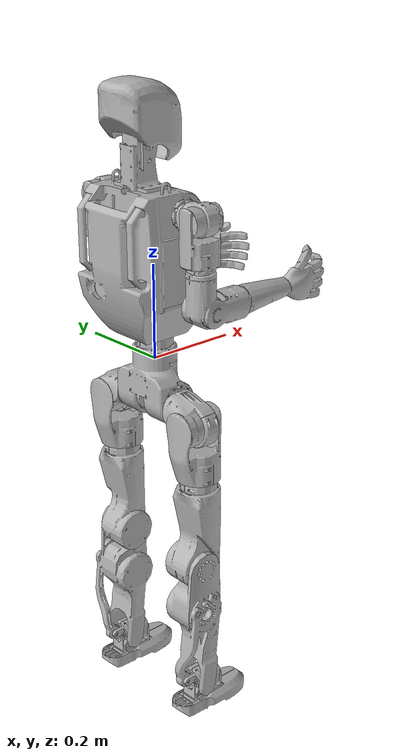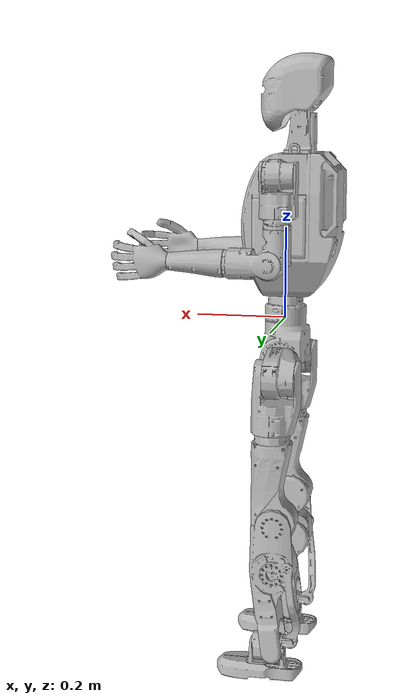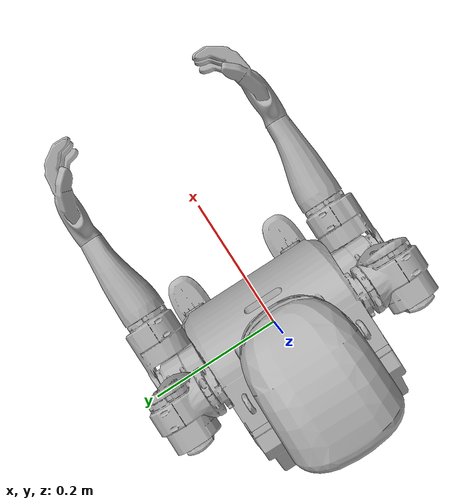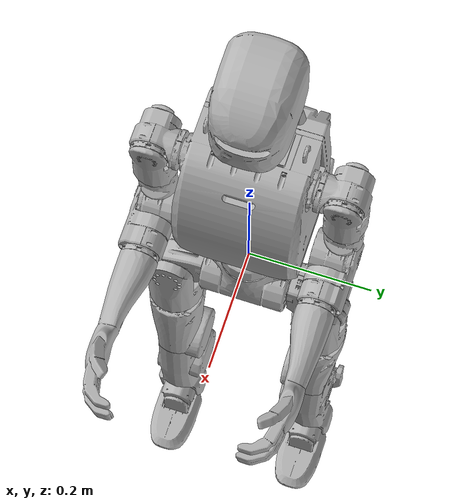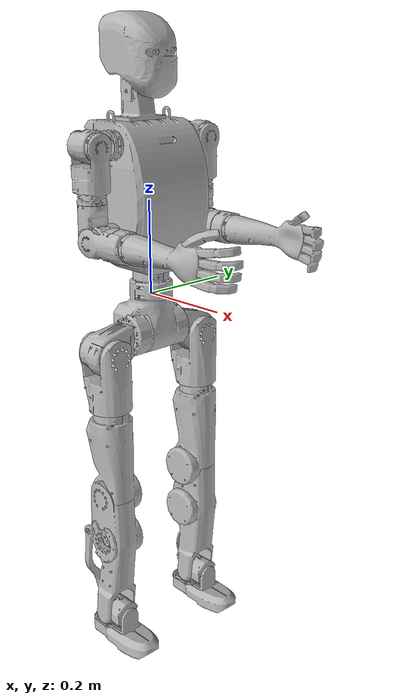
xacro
<?xml version="1.0"?>
<robot xmlns:xacro="http://www.ros.org/wiki/xacro" name="k1">
  <xacro:property name="meshes_file_direction" value="package://ai_sapiens_description/meshes/k1_rev1" />
  <xacro:arg name="use_mock_hardware" default="false" />
  <xacro:arg name="mock_sensor_commands" default="false" />
  <xacro:arg name="prefix" default="" />
  <xacro:arg name="model" default="k1_rev1" />
  <xacro:arg name="sim_mujoco" default="false" />
  <xacro:arg name="depth_policy_yaml" default="" />
  <xacro:arg name="parkour_physics" default="false" />
  <xacro:arg name="mujoco_viewer" default="true" />
  <xacro:arg name="mujoco_gantry" default="true" />
  <xacro:arg name="radiomaster_usb" default="false" />
  <xacro:arg name="radiomaster_usb_device" default="/dev/input/js0" />
  <xacro:include filename="$(find ai_sapiens_description)/urdf/k1_rev1/$(arg model).urdf.xacro" />

  <xacro:include filename="$(find ai_sapiens_description)/ros2_control/k1_rev1/k1.ros2_control.xacro" />
  <xacro:include filename="$(find ai_sapiens_description)/ros2_control/k1_rev1/k1_mujoco.ros2_control.xacro" />
  <xacro:include filename="$(find ai_sapiens_description)/ros2_control/k1_rev1/k1_radiomaster_usb.ros2_control.xacro" />

  <xacro:k1/>

  <xacro:if value="$(arg sim_mujoco)">
    <xacro:k1_mujoco_system
      viewer="$(arg mujoco_viewer)"
      gantry="$(arg mujoco_gantry)"
      depth_policy_yaml="$(arg depth_policy_yaml)"
      parkour_physics="$(arg parkour_physics)"/>
    <xacro:if value="$(arg radiomaster_usb)">
      <xacro:k1_radiomaster_usb_system
        device="$(arg radiomaster_usb_device)"/>
    </xacro:if>
  </xacro:if>
  <xacro:unless value="$(arg sim_mujoco)">
    <xacro:k1_system
      use_mock_hardware="$(arg use_mock_hardware)"
      mock_sensor_commands="$(arg mock_sensor_commands)"/>
  </xacro:unless>

</robot>

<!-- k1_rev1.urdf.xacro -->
<robot xmlns:xacro="http://www.ros.org/wiki/xacro">
<xacro:macro name="k1">
  <material name="dark">
    <color rgba="0.2 0.2 0.2 1"/>
  </material>
  <material name="white">
    <color rgba="0.7 0.7 0.7 1"/>
  </material>
  <material name="blue">
    <color rgba="0.0 0.0 1.0 1"/>
  </material>
  <mujoco>
    <compiler discardvisual="false" meshdir="package://ai_sapiens_description/meshes/k1_rev1"/>
  </mujoco>

  <link name="head_link">
    <visual>
      <origin rpy="0 0 0" xyz="0 0 0"/>
      <geometry>
        <mesh filename="package://ai_sapiens_description/meshes/k1_rev1/head_link.stl" scale="0.001 0.001 0.001"/>
      </geometry>
      <material name="white"/>
    </visual>
    <collision>
      <origin rpy="0 0 0" xyz="0 0 0"/>
      <geometry>
        <mesh filename="package://ai_sapiens_description/meshes/k1_rev1/head_link.stl" scale="0.001 0.001 0.001"/>
      </geometry>
    </collision>
    <inertial>
      <origin xyz="7.905180800e-03 7.391136900e-06 1.108984300e-01" />
      <mass value="6.792353500e-01" />
      <inertia ixx="2.471933800e-03" ixy="-8.394472500e-08" ixz="2.835210500e-05"
                iyy="2.738339300e-03" iyz="-9.341772900e-08"
                izz="1.531146400e-03" />
    </inertial>
  </link>

  <link name="pelvis">
    <visual>
      <origin rpy="0 0 0" xyz="0 0 0"/>
      <geometry>
        <mesh filename="package://ai_sapiens_description/meshes/k1_rev1/pelvis.stl" scale="0.001 0.001 0.001"/>
      </geometry>
      <material name="white"/>
    </visual>
    <inertial>
      <origin xyz="-2.925359500e-03 1.127629500e-06 -5.031528100e-02" />
      <mass value="3.612285000e+00" />
      <inertia ixx="1.310875300e-02" ixy="-2.328763400e-07" ixz="5.514392300e-05"
                iyy="9.176269400e-03" iyz="0.000000000e+00"
                izz="7.737728900e-03" />
    </inertial>

  </link>
  <!-- Legs -->
  <link name="left_hip_pitch_link">
    <visual>
      <origin rpy="0 0 0" xyz="0 0 0"/>
      <geometry>
        <mesh filename="package://ai_sapiens_description/meshes/k1_rev1/left_hip_pitch_link.stl" scale="0.001 0.001 0.001"/>
      </geometry>
      <material name="white"/>
    </visual>
    <collision>
      <origin xyz="0 0.05 -0.02" rpy="1.5708 0 0"/>
      <geometry>
        <cylinder radius="0.04" length="0.07"/>
      </geometry>
    </collision>
    <inertial>
      <origin xyz="-1.531630904980e-03 7.963346595672e-02 -2.592428596527e-02" />
      <mass value="1.145107600000e+00" />
      <inertia ixx="1.421889812386e-03" ixy="2.042184810525e-05" ixz="-1.676488789760e-05"
                iyy="1.033629795483e-03" iyz="1.517172548758e-04"
                izz="1.088132517762e-03" />
    </inertial>

  </link>
  <joint name="left_hip_pitch_joint" type="revolute">
    <origin rpy="0 0 0" xyz="0.0 0.040 -0.081"/>
    <parent link="pelvis"/>
    <child link="left_hip_pitch_link"/>
    <axis xyz="0 1 0"/>
    <limit effort="96.9" lower="-2.4435" upper="2.4435" velocity="11.5"/>
  </joint>
  <link name="left_hip_roll_link">
    <visual>
      <origin rpy="0 0 0" xyz="0 0 0"/>
      <geometry>
        <mesh filename="package://ai_sapiens_description/meshes/k1_rev1/left_hip_roll_link.stl" scale="0.001 0.001 0.001"/>
      </geometry>
      <material name="white"/>
    </visual>
    <inertial>
      <origin xyz="1.451723700000e-02 0.000000000000e+00 -7.908224400000e-02" />
      <mass value="1.553528600000e+00" />
      <inertia ixx="2.895593913609e-03" ixy="0.000000000000e+00" ixz="-7.419460800000e-05"
                iyy="3.373453150000e-03" iyz="-2.389544800000e-07"
                izz="1.930057813609e-03" />
    </inertial>
  </link>
  <joint name="left_hip_roll_joint" type="revolute">
    <origin rpy="0 0 0" xyz="-0.008 0.085 -0.030"/>
    <parent link="left_hip_pitch_link"/>
    <child link="left_hip_roll_link"/>
    <axis xyz="1 0 0"/>
    <limit effort="96.9" lower="-0.6109" upper="2.5307" velocity="11.5"/>
  </joint>
  <link name="left_hip_yaw_link">
    <visual>
      <origin rpy="0 0 0" xyz="0 0 0"/>
      <geometry>
        <mesh filename="package://ai_sapiens_description/meshes/k1_rev1/left_hip_yaw_link.stl" scale="0.001 0.001 0.001"/>
      </geometry>
      <material name="white"/>
    </visual>
    <collision>
      <origin xyz="0.0 0 -0.08" rpy="0 0 0"/>
      <geometry>
        <cylinder radius="0.045" length="0.13"/>
      </geometry>
    </collision>
    <inertial>
      <origin xyz="-2.271799169407e-03 -5.348690484479e-03 -1.837910791103e-01" />
      <mass value="1.835774100000e+00" />
      <inertia ixx="1.056957363374e-02" ixy="-5.176745338720e-05" ixz="-4.528312668963e-04"
                iyy="1.098149862574e-02" iyz="-5.657788862029e-04"
                izz="1.600639866804e-03" />
    </inertial>
  </link>
  <joint name="left_hip_yaw_joint" type="revolute">
    <origin rpy="0 0 0" xyz="0.015 0.0 -0.0905"/>
    <parent link="left_hip_roll_link"/>
    <child link="left_hip_yaw_link"/>
    <axis xyz="0 0 1"/>
    <limit effort="96.9" lower="-3.1416" upper="3.1416" velocity="11.5"/>
  </joint>
  <link name="left_knee_link">
    <visual>
      <origin rpy="0 0 0" xyz="0 0 0"/>
      <geometry>
        <mesh filename="package://ai_sapiens_description/meshes/k1_rev1/left_knee_link.stl" scale="0.001 0.001 0.001"/>
      </geometry>
      <material name="white"/>
    </visual>
    <inertial>
      <origin xyz="-2.270241351379e-03 4.250424132236e-03 -1.299305649983e-01" />
      <mass value="2.527145400000e+00" />
      <inertia ixx="1.262780659654e-02" ixy="1.945190841167e-04" ixz="-7.980998797765e-04"
                iyy="1.311422450046e-02" iyz="-3.173312502248e-04"
                izz="2.980295546432e-03" />
    </inertial>
    <collision>
      <origin xyz="0.0 0 -0.10" rpy="0 0 0"/>
      <geometry>
        <cylinder radius="0.04" length="0.18"/>
      </geometry>
    </collision>
  </link>
  <joint name="left_knee_joint" type="revolute">
    <origin rpy="0 0 0" xyz="-0.007 0.0 -0.2365"/>
    <parent link="left_hip_yaw_link"/>
    <child link="left_knee_link"/>
    <axis xyz="0 1 0"/>
    <limit effort="96.9" lower="0" upper="2.3562" velocity="11.5"/>
  </joint>
  <link name="left_ankle_pitch_link">
    <visual>
      <origin rpy="0 0 0" xyz="0 0 0"/>
      <geometry>
        <mesh filename="package://ai_sapiens_description/meshes/k1_rev1/left_ankle_pitch_link.stl" scale="0.001 0.001 0.001"/>
      </geometry>
      <material name="white"/>
    </visual>
    <inertial>
      <origin xyz="4.741514100000e-03 0.000000000000e+00 2.430240700000e-03" />
      <mass value="6.809980800000e-01" />
      <inertia ixx="3.739276718594e-04" ixy="0.000000000000e+00" ixz="4.977216400000e-05"
                iyy="4.252725400000e-04" iyz="0.000000000000e+00"
                izz="4.458709718594e-04" />
    </inertial>
  </link>
  <joint name="left_ankle_pitch_joint" type="revolute">
    <origin rpy="0 0 0" xyz="0.0 0.0 -0.294"/>
    <parent link="left_knee_link"/>
    <child link="left_ankle_pitch_link"/>
    <axis xyz="0 1 0"/>
    <limit effort="96.9" lower="-0.7854" upper="0.7854" velocity="11.5"/>
  </joint>
  <link name="left_ankle_roll_link">
    <visual>
      <origin rpy="0 0 0" xyz="0 0 0"/>
      <geometry>
        <mesh filename="package://ai_sapiens_description/meshes/k1_rev1/left_ankle_roll_link.stl" scale="0.001 0.001 0.001"/>
      </geometry>
      <material name="white"/>
    </visual>

    <collision>
      <origin rpy="0 0 0" xyz="0 0 0"/>
      <geometry>
        <mesh filename="package://ai_sapiens_description/meshes/k1_rev1/left_ankle_roll_link.stl" scale="0.001 0.001 0.001"/>
      </geometry>
    </collision>
    <inertial>
      <origin xyz="3.360468400000e-02 0.000000000000e+00 -4.106129100000e-02" />
      <mass value="6.144995200000e-01" />
      <inertia ixx="4.106078400928e-04" ixy="0.000000000000e+00" ixz="4.426833600000e-05"
                iyy="1.507082100000e-03" iyz="0.000000000000e+00"
                izz="1.591643400093e-03" />
    </inertial>

  </link>
  <joint name="left_ankle_roll_joint" type="revolute">
    <origin rpy="0 0 0" xyz="0 0 0.0"/>
    <parent link="left_ankle_pitch_link"/>
    <child link="left_ankle_roll_link"/>
    <axis xyz="1 0 0"/>
    <limit effort="47.3" lower="-0.5236" upper="0.5236" velocity="20.9"/>
  </joint>
  <link name="right_hip_pitch_link">
    <visual>
      <origin rpy="0 0 0" xyz="0 0 0"/>
      <geometry>
        <mesh filename="package://ai_sapiens_description/meshes/k1_rev1/right_hip_pitch_link.stl" scale="0.001 0.001 0.001"/>
      </geometry>
      <material name="white"/>
    </visual>
    <collision>
      <origin xyz="0 -0.05 -0.02" rpy="1.5708 0 0"/>
      <geometry>
        <cylinder radius="0.04" length="0.07"/>
      </geometry>
    </collision>
    <inertial>
      <origin xyz="-1.531630904980e-03 -7.963346595672e-02 -2.592428596527e-02" />
      <mass value="1.145107600000e+00" />
      <inertia ixx="1.421889812386e-03" ixy="-2.042184810525e-05" ixz="-1.676488789760e-05"
                iyy="1.033629795483e-03" iyz="-1.517172548758e-04"
                izz="1.088132517762e-03" />
    </inertial>
  </link>
  <joint name="right_hip_pitch_joint" type="revolute">
    <origin rpy="0 0 0" xyz="0.0 -0.040 -0.081"/>
    <parent link="pelvis"/>
    <child link="right_hip_pitch_link"/>
    <axis xyz="0 1 0"/>
    <limit effort="96.9" lower="-2.4435" upper="2.4435" velocity="11.5"/>
  </joint>
  <link name="right_hip_roll_link">
    <visual>
      <origin rpy="0 0 0" xyz="0 0 0"/>
      <geometry>
        <mesh filename="package://ai_sapiens_description/meshes/k1_rev1/right_hip_roll_link.stl" scale="0.001 0.001 0.001"/>
      </geometry>
      <material name="white"/>
    </visual>
    <inertial>
      <origin xyz="1.451723700000e-02 0.000000000000e+00 -7.908224400000e-02" />
      <mass value="1.553528600000e+00" />
      <inertia ixx="2.895593913609e-03" ixy="0.000000000000e+00" ixz="-7.419460800000e-05"
                iyy="3.373453150000e-03" iyz="2.389544800000e-07"
                izz="1.930057813609e-03" />
    </inertial>
  </link>
  <joint name="right_hip_roll_joint" type="revolute">
    <origin rpy="0 0 0" xyz="-0.008 -0.085 -0.030"/>
    <parent link="right_hip_pitch_link"/>
    <child link="right_hip_roll_link"/>
    <axis xyz="1 0 0"/>
    <limit effort="96.9" lower="-2.5307" upper="0.6109" velocity="11.5"/>
  </joint>
  <link name="right_hip_yaw_link">
    <visual>
      <origin rpy="0 0 0" xyz="0 0 0"/>
      <geometry>
        <mesh filename="package://ai_sapiens_description/meshes/k1_rev1/right_hip_yaw_link.stl" scale="0.001 0.001 0.001"/>
      </geometry>
      <material name="white"/>
    </visual>
    <collision>
      <origin xyz="0.0 0 -0.08" rpy="0 0 0"/>
      <geometry>
        <cylinder radius="0.045" length="0.13"/>
      </geometry>
    </collision>
    <inertial>
      <origin xyz="-2.271799169407e-03 5.348690484479e-03 -1.837910791103e-01" />
      <mass value="1.835774100000e+00" />
      <inertia ixx="1.056957363374e-02" ixy="5.176745338720e-05" ixz="-4.528312668963e-04"
                iyy="1.098149862574e-02" iyz="5.657788862029e-04"
                izz="1.600639866804e-03" />
    </inertial>
  </link>
  <joint name="right_hip_yaw_joint" type="revolute">
    <origin rpy="0 0 0" xyz="0.015 0.0 -0.0905"/>
    <parent link="right_hip_roll_link"/>
    <child link="right_hip_yaw_link"/>
    <axis xyz="0 0 1"/>
    <limit effort="96.9" lower="-3.1416" upper="3.1416" velocity="11.5"/>
  </joint>
  <link name="right_knee_link">
    <visual>
      <origin rpy="0 0 0" xyz="0 0 0"/>
      <geometry>
        <mesh filename="package://ai_sapiens_description/meshes/k1_rev1/right_knee_link.stl" scale="0.001 0.001 0.001"/>
      </geometry>
      <material name="white"/>
    </visual>
    <collision>
      <origin xyz="0.0 0 -0.10" rpy="0 0 0"/>
      <geometry>
        <cylinder radius="0.04" length="0.18"/>
      </geometry>
    </collision>
    <inertial>
      <origin xyz="-2.270241351379e-03 -4.250424132236e-03 -1.299305649983e-01" />
      <mass value="2.527145400000e+00" />
      <inertia ixx="1.262780659654e-02" ixy="-1.945190841167e-04" ixz="-7.980998797765e-04"
                iyy="1.311422450046e-02" iyz="3.173312502248e-04"
                izz="2.980295546432e-03" />
    </inertial>
  </link>
  <joint name="right_knee_joint" type="revolute">
    <origin rpy="0 0 0" xyz="-0.007 0.0 -0.2365"/>
    <parent link="right_hip_yaw_link"/>
    <child link="right_knee_link"/>
    <axis xyz="0 1 0"/>
    <limit effort="96.9" lower="0" upper="2.3562" velocity="11.5"/>
  </joint>
  <link name="right_ankle_pitch_link">
    <visual>
      <origin rpy="0 0 0" xyz="0 0 0"/>
      <geometry>
        <mesh filename="package://ai_sapiens_description/meshes/k1_rev1/right_ankle_pitch_link.stl" scale="0.001 0.001 0.001"/>
      </geometry>
      <material name="white"/>
    </visual>
    <inertial>
      <origin xyz="4.741514100000e-03 0.000000000000e+00 2.430240700000e-03" />
      <mass value="6.809980800000e-01" />
      <inertia ixx="3.739276718594e-04" ixy="0.000000000000e+00" ixz="4.977216400000e-05"
                iyy="4.252725400000e-04" iyz="0.000000000000e+00"
                izz="4.458709718594e-04" />
    </inertial>
  </link>
  <joint name="right_ankle_pitch_joint" type="revolute">
    <origin rpy="0 0 0" xyz="0.0 0.0 -0.294"/>
    <parent link="right_knee_link"/>
    <child link="right_ankle_pitch_link"/>
    <axis xyz="0 1 0"/>
    <limit effort="96.9" lower="-0.7854" upper="0.7854" velocity="11.5"/>
  </joint>
  <link name="right_ankle_roll_link">
    <visual>
      <origin rpy="0 0 0" xyz="0 0 0"/>
      <geometry>
        <mesh filename="package://ai_sapiens_description/meshes/k1_rev1/right_ankle_roll_link.stl" scale="0.001 0.001 0.001"/>
      </geometry>
      <material name="white"/>
    </visual>

    <collision>
      <origin rpy="0 0 0" xyz="0 0 0"/>
      <geometry>
        <mesh filename="package://ai_sapiens_description/meshes/k1_rev1/right_ankle_roll_link.stl" scale="0.001 0.001 0.001"/>
      </geometry>
    </collision>
    <inertial>
      <origin xyz="3.360468400000e-02 0.000000000000e+00 -4.106129100000e-02" />
      <mass value="6.144995200000e-01" />
      <inertia ixx="4.106078400928e-04" ixy="0.000000000000e+00" ixz="4.426833600000e-05"
                iyy="1.507082100000e-03" iyz="0.000000000000e+00"
                izz="1.591643400093e-03" />
    </inertial>
  </link>
  <joint name="right_ankle_roll_joint" type="revolute">
    <origin rpy="0 0 0" xyz="0 0 0.0"/>
    <parent link="right_ankle_pitch_link"/>
    <child link="right_ankle_roll_link"/>
    <axis xyz="1 0 0"/>
    <limit effort="47.3" lower="-0.5236" upper="0.5236" velocity="20.9"/>
  </joint>

  <joint name="waist_yaw_joint" type="revolute">
    <origin rpy="0 0 0" xyz="0 0 0"/>
    <parent link="pelvis"/>
    <child link="torso_link"/>
    <axis xyz="0 0 1"/>
    <limit effort="96.9" lower="-6.2832" upper="6.2832" velocity="11.5"/>
  </joint>
  <link name="torso_link">
    <visual>
      <origin rpy="0 0 0" xyz="0 0 0"/>
      <geometry>
        <mesh filename="package://ai_sapiens_description/meshes/k1_rev1/torso_link.stl" scale="0.001 0.001 0.001"/>
      </geometry>
      <material name="white"/>
    </visual>
    <collision>
      <origin rpy="0 0 0" xyz="-0.02 0 0.24"/>
      <geometry>
        <box size="0.2 0.17 0.17"/>
      </geometry>
    </collision>
    <inertial>
      <origin xyz="-9.348939900e-03 5.521418600e-04 2.188060700e-01" />
      <mass value="8.485159800e+00" />
      <inertia ixx="8.705508700e-02" ixy="1.583453100e-04" ixz="5.178762500e-03"
                iyy="7.305000800e-02" iyz="5.325749700e-04"
                izz="4.271812600e-02" />
    </inertial>
  </link>
  <joint name="head_joint" type="fixed">
    <origin rpy="0 0 0" xyz="-0.02725 0 0.361"/>
    <parent link="torso_link"/>
    <child link="head_link"/>
  </joint>
  <link name="left_shoulder_pitch_link">
    <visual>
      <origin rpy="0 0 0" xyz="0 0 0"/>
      <geometry>
        <mesh filename="package://ai_sapiens_description/meshes/k1_rev1/left_shoulder_pitch_link.stl" scale="0.001 0.001 0.001"/>
      </geometry>
      <material name="white"/>
    </visual>
    <collision>
      <origin rpy="0 1.5707963267948966 0" xyz="0 0.075 0.0"/>
      <geometry>
        <cylinder length="0.05" radius="0.032"/>
      </geometry>
    </collision>
    <inertial>
       <origin xyz="-2.860536300000e-03 7.356393650000e-02 3.947481570000e-06" />
       <mass value="6.074257400000e-01" />
       <inertia ixx="3.529002080847e-04" ixy="6.220661200000e-06" ixz="-6.500570000000e-08"
       iyy="3.006119076318e-04" iyz="-8.238998319126e-09"
       izz="3.483892704529e-04" />
    </inertial>
  </link>
  <joint name="left_shoulder_pitch_joint" type="revolute">
    <origin rpy="0 0 0" xyz="0.0015 0.069 0.319"/>
    <parent link="torso_link"/>
    <child link="left_shoulder_pitch_link"/>
    <axis xyz="0 1 0"/>
    <limit effort="47.3" lower="-3.1416" upper="3.1416" velocity="20.9"/>
  </joint>
  <link name="left_shoulder_roll_link">
    <visual>
      <origin rpy="0 0 0" xyz="0 0 0"/>
      <geometry>
        <mesh filename="package://ai_sapiens_description/meshes/k1_rev1/left_shoulder_roll_link.stl" scale="0.001 0.001 0.001"/>
      </geometry>
      <material name="white"/>
    </visual>
    <collision>
      <origin rpy="0 0 0" xyz="0.0 0.000 -0.13"/>
      <geometry>
        <cylinder length="0.08" radius="0.035"/>
      </geometry>
    </collision>
    <inertial>
       <origin xyz="-8.598869950000e-04 0.000000000000e+00 -6.266809700000e-02" />
       <mass value="7.676193300000e-01" />
       <inertia ixx="7.540640315074e-04" ixy="-3.848386467835e-14" ixz="-3.800846300000e-05"
       iyy="9.381096300000e-04" iyz="5.500000000099e-15"
       izz="5.306054865074e-04" />
    </inertial>
  </link>
  <joint name="left_shoulder_roll_joint" type="revolute">
    <origin rpy="0 0 0" xyz="-0.005 0.077 0.0"/>
    <parent link="left_shoulder_pitch_link"/>
    <child link="left_shoulder_roll_link"/>
    <axis xyz="1 0 0"/>
    <limit effort="47.3" lower="0" upper="3.1416" velocity="20.9"/>
  </joint>
  <link name="left_shoulder_yaw_link">
    <visual>
      <origin rpy="0 0 0" xyz="0 0 0"/>
      <geometry>
        <mesh filename="package://ai_sapiens_description/meshes/k1_rev1/left_shoulder_yaw_link.stl" scale="0.001 0.001 0.001"/>
      </geometry>
      <material name="white"/>
    </visual>
    <inertial>
       <origin xyz="1.240965200000e-02 -4.015957800000e-03 -1.037212200000e-01" />
       <mass value="6.946265100000e-01" />
       <inertia ixx="7.202233300000e-04" ixy="1.411072400000e-05" ixz="1.081796000000e-04"
       iyy="7.634050600000e-04" iyz="-3.396234100000e-05"
       izz="3.599643200000e-04" />
    </inertial>
  </link>
  <joint name="left_shoulder_yaw_joint" type="revolute">
    <origin rpy="0 0 0" xyz="0.0 0.0 -0.0687"/>
    <parent link="left_shoulder_roll_link"/>
    <child link="left_shoulder_yaw_link"/>
    <axis xyz="0 0 1"/>
    <limit effort="47.3" lower="-3.1416" upper="3.1416" velocity="20.9"/>
  </joint>
  <link name="left_elbow_link">
    <visual>
      <origin rpy="0 0 0" xyz="0 0 0"/>
      <geometry>
        <mesh filename="package://ai_sapiens_description/meshes/k1_rev1/left_elbow_link.stl" scale="0.001 0.001 0.001"/>
      </geometry>
      <material name="white"/>
    </visual>
    <inertial>
       <origin xyz="6.552039900000e-02 4.121843650000e-03 0.000000000000e+00" />
       <mass value="6.689549900000e-01" />
       <inertia ixx="3.736555131490e-04" ixy="1.216866050000e-04" ixz="0.000000000000e+00"
       iyy="5.869930881490e-04" iyz="-3.369916297683e-12"
       izz="6.490868800000e-04" />
    </inertial>
  </link>
  <joint name="left_elbow_joint" type="revolute">
    <origin rpy="0 0 0" xyz="0.016 -0.007 -0.1153"/>
    <parent link="left_shoulder_yaw_link"/>
    <child link="left_elbow_link"/>
    <axis xyz="0 1 0"/>
    <limit effort="47.3" lower="-0.7854" upper="2.1817" velocity="20.9"/>
  </joint>
  <joint name="left_wrist_roll_joint" type="revolute">
    <origin rpy="0 0 0" xyz="0.0687 0.0 0.0"/>
    <axis xyz="1 0 0"/>
    <parent link="left_elbow_link"/>
    <child link="left_wrist_roll_rubber_hand"/>
    <limit effort="47.3" lower="-3.1416" upper="3.1416" velocity="20.9"/>
  </joint>
  <link name="left_wrist_roll_rubber_hand">
    <visual>
      <origin rpy="0 0 0" xyz="0 0 0"/>
      <geometry>
        <mesh filename="package://ai_sapiens_description/meshes/k1_rev1/left_wrist_roll_rubber_hand.stl" scale="0.001 0.001 0.001"/>
      </geometry>
      <material name="white"/>
    </visual>
    <collision>
      <origin rpy="0 0 0" xyz="0 0 0"/>
      <geometry>
        <mesh filename="package://ai_sapiens_description/meshes/k1_rev1/left_wrist_roll_rubber_hand.stl" scale="0.001 0.001 0.001"/>
      </geometry>
    </collision>
    <inertial>
       <origin xyz="1.407654250000e-01 5.248606200000e-04 4.039338650000e-04" />
       <mass value="3.690000000000e-01" />
       <inertia ixx="2.034216700000e-04" ixy="1.009162200000e-04" ixz="4.214169350000e-05"
       iyy="2.413813900000e-03" iyz="-3.970702750000e-06"
       izz="2.355377400000e-03" />
    </inertial>
  </link>
  <link name="right_shoulder_pitch_link">
    <visual>
      <origin rpy="0 0 0" xyz="0 0 0"/>
      <geometry>
        <mesh filename="package://ai_sapiens_description/meshes/k1_rev1/right_shoulder_pitch_link.stl" scale="0.001 0.001 0.001"/>
      </geometry>
      <material name="white"/>
    </visual>
    <collision>
      <origin rpy="0 1.5707963267948966 0" xyz="0 -0.075 0.0"/>
      <geometry>
        <cylinder length="0.05" radius="0.032"/>
      </geometry>
    </collision>
    <inertial>
      <origin xyz="-2.860536300000e-03 -7.356393650000e-02 3.947481570000e-06" />
      <mass value="6.074257400000e-01" />
      <inertia ixx="3.529002080847e-04" ixy="-6.220661200000e-06" ixz="-6.500570000000e-08"
                iyy="3.006119076318e-04" iyz="8.238998319126e-09"
                izz="3.483892704529e-04" />
    </inertial>
  </link>
  <joint name="right_shoulder_pitch_joint" type="revolute">
    <origin rpy="0 0 0" xyz="0.0015 -0.069 0.319"/>
    <parent link="torso_link"/>
    <child link="right_shoulder_pitch_link"/>
    <axis xyz="0 1 0"/>
    <limit effort="47.3" lower="-3.1416" upper="3.1416" velocity="20.9"/>
  </joint>
  <link name="right_shoulder_roll_link">
    <visual>
      <origin rpy="0 0 0" xyz="0 0 0"/>
      <geometry>
        <mesh filename="package://ai_sapiens_description/meshes/k1_rev1/right_shoulder_roll_link.stl" scale="0.001 0.001 0.001"/>
      </geometry>
      <material name="white"/>
    </visual>
    <collision>
      <origin rpy="0 0 0" xyz="0.0 0.000 -0.13"/>
      <geometry>
        <cylinder length="0.08" radius="0.035"/>
      </geometry>
    </collision>
    <inertial>
       <origin xyz="-8.598869950000e-04 0.000000000000e+00 -6.266809700000e-02" />
       <mass value="7.676193300000e-01" />
       <inertia ixx="7.540640315074e-04" ixy="3.848386467835e-14" ixz="-3.800846300000e-05"
       iyy="9.381096300000e-04" iyz="-5.500000000099e-15"
       izz="5.306054865074e-04" />
    </inertial>
  </link>

  <joint name="right_shoulder_roll_joint" type="revolute">
    <origin rpy="0 0 0" xyz="-0.005 -0.077 0.0"/>
    <parent link="right_shoulder_pitch_link"/>
    <child link="right_shoulder_roll_link"/>
    <axis xyz="1 0 0"/>
    <limit effort="47.3" lower="-3.1416" upper="0" velocity="20.9"/>
  </joint>

  <link name="right_shoulder_yaw_link">
    <visual>
      <origin rpy="0 0 0" xyz="0 0 0"/>
      <geometry>
        <mesh filename="package://ai_sapiens_description/meshes/k1_rev1/right_shoulder_yaw_link.stl" scale="0.001 0.001 0.001"/>
      </geometry>
      <material name="white"/>
    </visual>
    <inertial>
       <origin xyz="1.240965200000e-02 4.015957800000e-03 -1.037212200000e-01" />
       <mass value="6.946265100000e-01" />
       <inertia ixx="7.202233300000e-04" ixy="-1.411072400000e-05" ixz="1.081796000000e-04"
       iyy="7.634050600000e-04" iyz="3.396234100000e-05"
       izz="3.599643200000e-04" />
    </inertial>
  </link>
  <joint name="right_shoulder_yaw_joint" type="revolute">
    <origin rpy="0 0 0" xyz="0.0 0.0 -0.0687"/>
    <parent link="right_shoulder_roll_link"/>
    <child link="right_shoulder_yaw_link"/>
    <axis xyz="0 0 1"/>
    <limit effort="47.3" lower="-3.1416" upper="3.1416" velocity="20.9"/>
  </joint>
  <link name="right_elbow_link">
    <visual>
      <origin rpy="0 0 0" xyz="0 0 0"/>
      <geometry>
        <mesh filename="package://ai_sapiens_description/meshes/k1_rev1/right_elbow_link.stl" scale="0.001 0.001 0.001"/>
      </geometry>
      <material name="white"/>
    </visual>
    <inertial>
       <origin xyz="6.552039900000e-02 -4.121843650000e-03 0.000000000000e+00" />
       <mass value="6.689549900000e-01" />
       <inertia ixx="3.736555131490e-04" ixy="-1.216866050000e-04" ixz="0.000000000000e+00"
       iyy="5.869930881490e-04" iyz="3.369916297683e-12"
       izz="6.490868800000e-04" />
    </inertial>
  </link>
  <joint name="right_elbow_joint" type="revolute">
    <origin rpy="0 0 0" xyz="0.016 0.007 -0.1153"/>
    <parent link="right_shoulder_yaw_link"/>
    <child link="right_elbow_link"/>
    <axis xyz="0 1 0"/>
    <limit effort="47.3" lower="-0.7854" upper="2.1817" velocity="20.9"/>
  </joint>
  <joint name="right_wrist_roll_joint" type="revolute">
    <origin rpy="0 0 0" xyz="0.0687 0.0 0.0"/>
    <axis xyz="1 0 0"/>
    <parent link="right_elbow_link"/>
    <child link="right_wrist_roll_rubber_hand"/>
    <limit effort="47.3" lower="-3.1416" upper="3.1416" velocity="20.9"/>
  </joint>

  <link name="right_wrist_roll_rubber_hand">
    <visual>
      <origin rpy="0 0 0" xyz="0 0 0"/>
      <geometry>
        <mesh filename="package://ai_sapiens_description/meshes/k1_rev1/right_wrist_roll_rubber_hand.stl" scale="0.001 0.001 0.001"/>
      </geometry>
      <material name="white"/>
    </visual>
    <collision>
      <origin rpy="0 0 0" xyz="0 0 0"/>
      <geometry>
        <mesh filename="package://ai_sapiens_description/meshes/k1_rev1/right_wrist_roll_rubber_hand.stl" scale="0.001 0.001 0.001"/>
      </geometry>
    </collision>
    <inertial>
       <origin xyz="1.407654250000e-01 -5.248606200000e-04 4.039338650000e-04" />
       <mass value="3.690000000000e-01" />
       <inertia ixx="2.034216700000e-04" ixy="-1.009162200000e-04" ixz="4.214169350000e-05"
       iyy="2.413813900000e-03" iyz="3.970702750000e-06"
       izz="2.355377400000e-03" />
    </inertial>
  </link>
</xacro:macro>
</robot>
